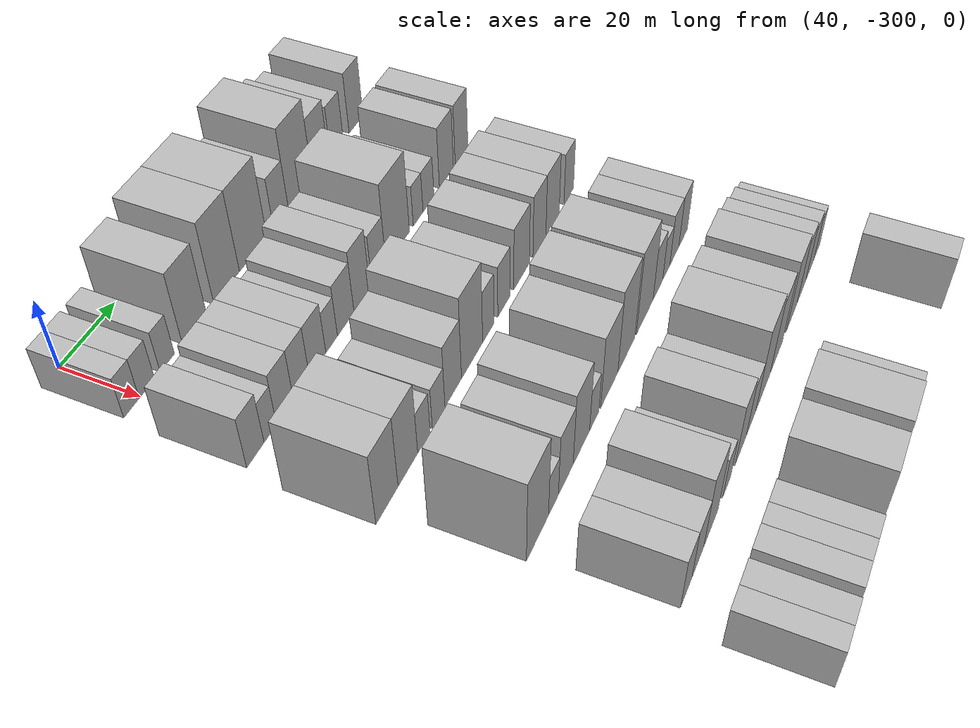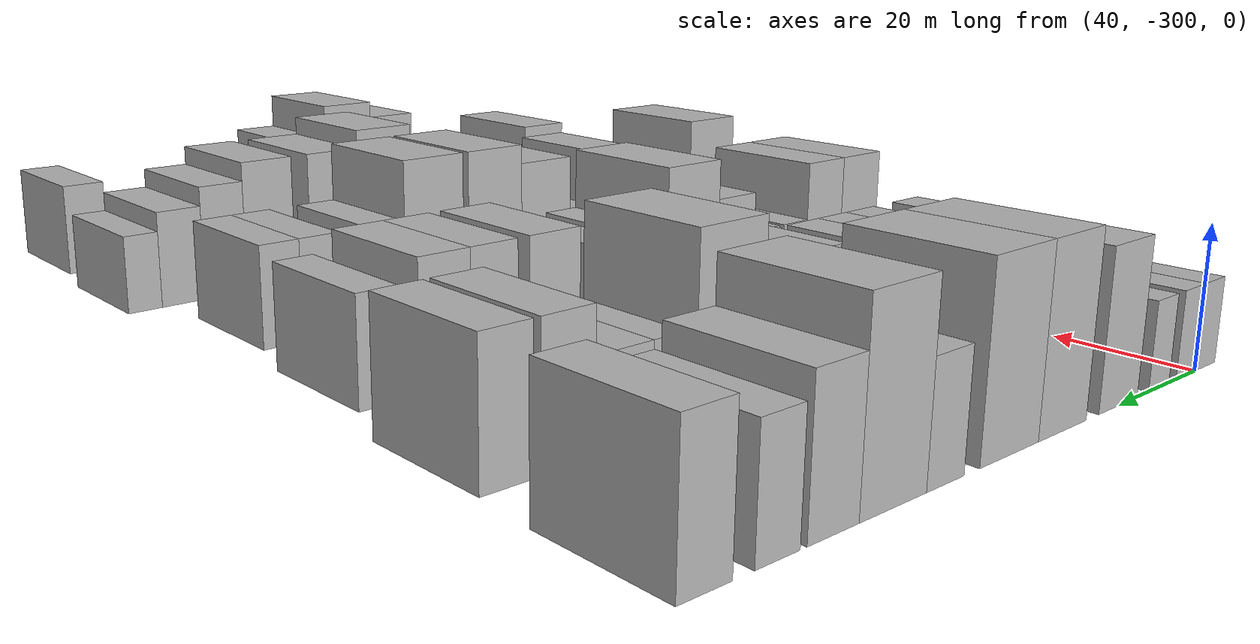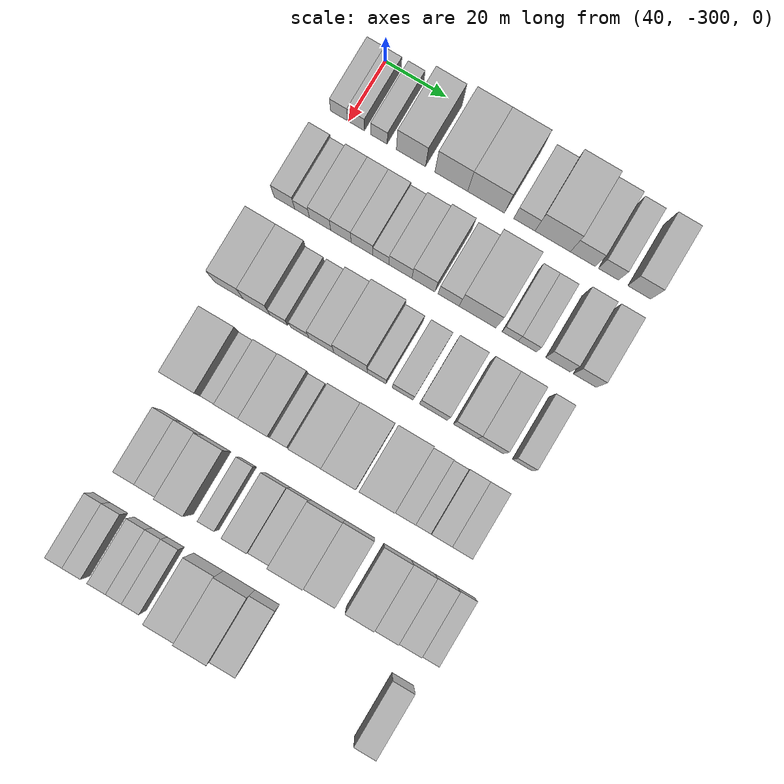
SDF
<sdf version="1.6">
 <world name="default">
  <model name="building_26">
   <static>1</static>
   <pose>50.0000 -303.1482 0 0.000000 0.000000 0.000000</pose>
   <link name="link">
    <pose>0 0 6.00 0 0 0</pose>
    <collision name="collision"><geometry><box><size>20.0000 5.4807 12.0000</size></box></geometry></collision>
    <visual name="visual">
     <cast_shadows>0</cast_shadows>
     <geometry><box><size>20.0000 5.4807 12.0000</size></box></geometry>
     <material>
      <script>
       <uri>model://HANNAS_wall/materials/scripts</uri>
       <uri>model://HANNAS_wall/materials/textures</uri>
       <name>vrc/HANNAS_wall</name>
      </script>
     </material>
    </visual>
   </link>
  </model>
  <model name="building_27">
   <static>1</static>
   <pose>50.0000 -297.6138 0 0.000000 0.000000 0.000000</pose>
   <link name="link">
    <pose>0 0 6.00 0 0 0</pose>
    <collision name="collision"><geometry><box><size>20.0000 5.5881 12.0000</size></box></geometry></collision>
    <visual name="visual">
     <cast_shadows>0</cast_shadows>
     <geometry><box><size>20.0000 5.5881 12.0000</size></box></geometry>
     <material>
      <script>
       <uri>model://HANNAS_wall/materials/scripts</uri>
       <uri>model://HANNAS_wall/materials/textures</uri>
       <name>vrc/HANNAS_wall</name>
      </script>
     </material>
    </visual>
   </link>
  </model>
  <model name="building_28">
   <static>1</static>
   <pose>50.0000 -290.1360 0 0.000000 0.000000 0.000000</pose>
   <link name="link">
    <pose>0 0 6.00 0 0 0</pose>
    <collision name="collision"><geometry><box><size>20.0000 5.3675 12.0000</size></box></geometry></collision>
    <visual name="visual">
     <cast_shadows>0</cast_shadows>
     <geometry><box><size>20.0000 5.3675 12.0000</size></box></geometry>
     <material>
      <script>
       <uri>model://HANNAS_wall/materials/scripts</uri>
       <uri>model://HANNAS_wall/materials/textures</uri>
       <name>vrc/HANNAS_wall</name>
      </script>
     </material>
    </visual>
   </link>
  </model>
  <model name="building_29">
   <static>1</static>
   <pose>50.0000 -279.7111 0 0.000000 0.000000 0.000000</pose>
   <link name="link">
    <pose>0 0 10.50 0 0 0</pose>
    <collision name="collision"><geometry><box><size>20.0000 9.4824 21.0000</size></box></geometry></collision>
    <visual name="visual">
     <cast_shadows>0</cast_shadows>
     <geometry><box><size>20.0000 9.4824 21.0000</size></box></geometry>
     <material>
      <script>
       <uri>model://HANNAS_wall/materials/scripts</uri>
       <uri>model://HANNAS_wall/materials/textures</uri>
       <name>vrc/HANNAS_wall</name>
      </script>
     </material>
    </visual>
   </link>
  </model>
  <model name="building_30">
   <static>1</static>
   <pose>50.0000 -266.6334 0 0.000000 0.000000 0.000000</pose>
   <link name="link">
    <pose>0 0 12.00 0 0 0</pose>
    <collision name="collision"><geometry><box><size>20.0000 10.6729 24.0000</size></box></geometry></collision>
    <visual name="visual">
     <cast_shadows>0</cast_shadows>
     <geometry><box><size>20.0000 10.6729 24.0000</size></box></geometry>
     <material>
      <script>
       <uri>model://HANNAS_wall/materials/scripts</uri>
       <uri>model://HANNAS_wall/materials/textures</uri>
       <name>vrc/HANNAS_wall</name>
      </script>
     </material>
    </visual>
   </link>
  </model>
  <model name="building_31">
   <static>1</static>
   <pose>50.0000 -255.3249 0 0.000000 0.000000 0.000000</pose>
   <link name="link">
    <pose>0 0 12.00 0 0 0</pose>
    <collision name="collision"><geometry><box><size>20.0000 11.9442 24.0000</size></box></geometry></collision>
    <visual name="visual">
     <cast_shadows>0</cast_shadows>
     <geometry><box><size>20.0000 11.9442 24.0000</size></box></geometry>
     <material>
      <script>
       <uri>model://HANNAS_wall/materials/scripts</uri>
       <uri>model://HANNAS_wall/materials/textures</uri>
       <name>vrc/HANNAS_wall</name>
      </script>
     </material>
    </visual>
   </link>
  </model>
  <model name="building_32">
   <static>1</static>
   <pose>50.0000 -242.9015 0 0.000000 0.000000 0.000000</pose>
   <link name="link">
    <pose>0 0 7.50 0 0 0</pose>
    <collision name="collision"><geometry><box><size>20.0000 6.9024 15.0000</size></box></geometry></collision>
    <visual name="visual">
     <cast_shadows>0</cast_shadows>
     <geometry><box><size>20.0000 6.9024 15.0000</size></box></geometry>
     <material>
      <script>
       <uri>model://HANNAS_wall/materials/scripts</uri>
       <uri>model://HANNAS_wall/materials/textures</uri>
       <name>vrc/HANNAS_wall</name>
      </script>
     </material>
    </visual>
   </link>
  </model>
  <model name="building_33">
   <static>1</static>
   <pose>50.0000 -233.7580 0 0.000000 0.000000 0.000000</pose>
   <link name="link">
    <pose>0 0 12.00 0 0 0</pose>
    <collision name="collision"><geometry><box><size>20.0000 11.3847 24.0000</size></box></geometry></collision>
    <visual name="visual">
     <cast_shadows>0</cast_shadows>
     <geometry><box><size>20.0000 11.3847 24.0000</size></box></geometry>
     <material>
      <script>
       <uri>model://HANNAS_wall/materials/scripts</uri>
       <uri>model://HANNAS_wall/materials/textures</uri>
       <name>vrc/HANNAS_wall</name>
      </script>
     </material>
    </visual>
   </link>
  </model>
  <model name="building_34">
   <static>1</static>
   <pose>50.0000 -224.0457 0 0.000000 0.000000 0.000000</pose>
   <link name="link">
    <pose>0 0 9.00 0 0 0</pose>
    <collision name="collision"><geometry><box><size>20.0000 8.0400 18.0000</size></box></geometry></collision>
    <visual name="visual">
     <cast_shadows>0</cast_shadows>
     <geometry><box><size>20.0000 8.0400 18.0000</size></box></geometry>
     <material>
      <script>
       <uri>model://HANNAS_wall/materials/scripts</uri>
       <uri>model://HANNAS_wall/materials/textures</uri>
       <name>vrc/HANNAS_wall</name>
      </script>
     </material>
    </visual>
   </link>
  </model>
  <model name="building_35">
   <static>1</static>
   <pose>50.0000 -215.7767 0 0.000000 0.000000 0.000000</pose>
   <link name="link">
    <pose>0 0 7.50 0 0 0</pose>
    <collision name="collision"><geometry><box><size>20.0000 6.4979 15.0000</size></box></geometry></collision>
    <visual name="visual">
     <cast_shadows>0</cast_shadows>
     <geometry><box><size>20.0000 6.4979 15.0000</size></box></geometry>
     <material>
      <script>
       <uri>model://HANNAS_wall/materials/scripts</uri>
       <uri>model://HANNAS_wall/materials/textures</uri>
       <name>vrc/HANNAS_wall</name>
      </script>
     </material>
    </visual>
   </link>
  </model>
  <model name="building_36">
   <static>1</static>
   <pose>50.0000 -205.8524 0 0.000000 0.000000 0.000000</pose>
   <link name="link">
    <pose>0 0 9.00 0 0 0</pose>
    <collision name="collision"><geometry><box><size>20.0000 7.3507 18.0000</size></box></geometry></collision>
    <visual name="visual">
     <cast_shadows>0</cast_shadows>
     <geometry><box><size>20.0000 7.3507 18.0000</size></box></geometry>
     <material>
      <script>
       <uri>model://HANNAS_wall/materials/scripts</uri>
       <uri>model://HANNAS_wall/materials/textures</uri>
       <name>vrc/HANNAS_wall</name>
      </script>
     </material>
    </visual>
   </link>
  </model>
  <model name="building_140">
   <static>1</static>
   <pose>79.0000 -303.5198 0 0.000000 0.000000 0.000000</pose>
   <link name="link">
    <pose>0 0 7.50 0 0 0</pose>
    <collision name="collision"><geometry><box><size>20.0000 6.6471 15.0000</size></box></geometry></collision>
    <visual name="visual">
     <cast_shadows>0</cast_shadows>
     <geometry><box><size>20.0000 6.6471 15.0000</size></box></geometry>
     <material>
      <script>
       <uri>model://HANNAS_wall/materials/scripts</uri>
       <uri>model://HANNAS_wall/materials/textures</uri>
       <name>vrc/HANNAS_wall</name>
      </script>
     </material>
    </visual>
   </link>
  </model>
  <model name="building_141">
   <static>1</static>
   <pose>79.0000 -297.7622 0 0.000000 0.000000 0.000000</pose>
   <link name="link">
    <pose>0 0 6.00 0 0 0</pose>
    <collision name="collision"><geometry><box><size>20.0000 4.8681 12.0000</size></box></geometry></collision>
    <visual name="visual">
     <cast_shadows>0</cast_shadows>
     <geometry><box><size>20.0000 4.8681 12.0000</size></box></geometry>
     <material>
      <script>
       <uri>model://HANNAS_wall/materials/scripts</uri>
       <uri>model://HANNAS_wall/materials/textures</uri>
       <name>vrc/HANNAS_wall</name>
      </script>
     </material>
    </visual>
   </link>
  </model>
  <model name="building_142">
   <static>1</static>
   <pose>79.0000 -291.8940 0 0.000000 0.000000 0.000000</pose>
   <link name="link">
    <pose>0 0 7.50 0 0 0</pose>
    <collision name="collision"><geometry><box><size>20.0000 6.8684 15.0000</size></box></geometry></collision>
    <visual name="visual">
     <cast_shadows>0</cast_shadows>
     <geometry><box><size>20.0000 6.8684 15.0000</size></box></geometry>
     <material>
      <script>
       <uri>model://HANNAS_wall/materials/scripts</uri>
       <uri>model://HANNAS_wall/materials/textures</uri>
       <name>vrc/HANNAS_wall</name>
      </script>
     </material>
    </visual>
   </link>
  </model>
  <model name="building_143">
   <static>1</static>
   <pose>79.0000 -285.1559 0 0.000000 0.000000 0.000000</pose>
   <link name="link">
    <pose>0 0 7.50 0 0 0</pose>
    <collision name="collision"><geometry><box><size>20.0000 6.6078 15.0000</size></box></geometry></collision>
    <visual name="visual">
     <cast_shadows>0</cast_shadows>
     <geometry><box><size>20.0000 6.6078 15.0000</size></box></geometry>
     <material>
      <script>
       <uri>model://HANNAS_wall/materials/scripts</uri>
       <uri>model://HANNAS_wall/materials/textures</uri>
       <name>vrc/HANNAS_wall</name>
      </script>
     </material>
    </visual>
   </link>
  </model>
  <model name="building_144">
   <static>1</static>
   <pose>79.0000 -278.3234 0 0.000000 0.000000 0.000000</pose>
   <link name="link">
    <pose>0 0 7.50 0 0 0</pose>
    <collision name="collision"><geometry><box><size>20.0000 7.0571 15.0000</size></box></geometry></collision>
    <visual name="visual">
     <cast_shadows>0</cast_shadows>
     <geometry><box><size>20.0000 7.0571 15.0000</size></box></geometry>
     <material>
      <script>
       <uri>model://HANNAS_wall/materials/scripts</uri>
       <uri>model://HANNAS_wall/materials/textures</uri>
       <name>vrc/HANNAS_wall</name>
      </script>
     </material>
    </visual>
   </link>
  </model>
  <model name="building_145">
   <static>1</static>
   <pose>79.0000 -272.2304 0 0.000000 0.000000 0.000000</pose>
   <link name="link">
    <pose>0 0 6.00 0 0 0</pose>
    <collision name="collision"><geometry><box><size>20.0000 5.1289 12.0000</size></box></geometry></collision>
    <visual name="visual">
     <cast_shadows>0</cast_shadows>
     <geometry><box><size>20.0000 5.1289 12.0000</size></box></geometry>
     <material>
      <script>
       <uri>model://HANNAS_wall/materials/scripts</uri>
       <uri>model://HANNAS_wall/materials/textures</uri>
       <name>vrc/HANNAS_wall</name>
      </script>
     </material>
    </visual>
   </link>
  </model>
  <model name="building_146">
   <static>1</static>
   <pose>79.0000 -265.9196 0 0.000000 0.000000 0.000000</pose>
   <link name="link">
    <pose>0 0 7.50 0 0 0</pose>
    <collision name="collision"><geometry><box><size>20.0000 7.4927 15.0000</size></box></geometry></collision>
    <visual name="visual">
     <cast_shadows>0</cast_shadows>
     <geometry><box><size>20.0000 7.4927 15.0000</size></box></geometry>
     <material>
      <script>
       <uri>model://HANNAS_wall/materials/scripts</uri>
       <uri>model://HANNAS_wall/materials/textures</uri>
       <name>vrc/HANNAS_wall</name>
      </script>
     </material>
    </visual>
   </link>
  </model>
  <model name="building_147">
   <static>1</static>
   <pose>79.0000 -258.4495 0 0.000000 0.000000 0.000000</pose>
   <link name="link">
    <pose>0 0 9.00 0 0 0</pose>
    <collision name="collision"><geometry><box><size>20.0000 7.4475 18.0000</size></box></geometry></collision>
    <visual name="visual">
     <cast_shadows>0</cast_shadows>
     <geometry><box><size>20.0000 7.4475 18.0000</size></box></geometry>
     <material>
      <script>
       <uri>model://HANNAS_wall/materials/scripts</uri>
       <uri>model://HANNAS_wall/materials/textures</uri>
       <name>vrc/HANNAS_wall</name>
      </script>
     </material>
    </visual>
   </link>
  </model>
  <model name="building_148">
   <static>1</static>
   <pose>79.0000 -250.3141 0 0.000000 0.000000 0.000000</pose>
   <link name="link">
    <pose>0 0 7.50 0 0 0</pose>
    <collision name="collision"><geometry><box><size>20.0000 6.8232 15.0000</size></box></geometry></collision>
    <visual name="visual">
     <cast_shadows>0</cast_shadows>
     <geometry><box><size>20.0000 6.8232 15.0000</size></box></geometry>
     <material>
      <script>
       <uri>model://HANNAS_wall/materials/scripts</uri>
       <uri>model://HANNAS_wall/materials/textures</uri>
       <name>vrc/HANNAS_wall</name>
      </script>
     </material>
    </visual>
   </link>
  </model>
  <model name="building_149">
   <static>1</static>
   <pose>79.0000 -240.9901 0 0.000000 0.000000 0.000000</pose>
   <link name="link">
    <pose>0 0 12.00 0 0 0</pose>
    <collision name="collision"><geometry><box><size>20.0000 11.8248 24.0000</size></box></geometry></collision>
    <visual name="visual">
     <cast_shadows>0</cast_shadows>
     <geometry><box><size>20.0000 11.8248 24.0000</size></box></geometry>
     <material>
      <script>
       <uri>model://HANNAS_wall/materials/scripts</uri>
       <uri>model://HANNAS_wall/materials/textures</uri>
       <name>vrc/HANNAS_wall</name>
      </script>
     </material>
    </visual>
   </link>
  </model>
  <model name="building_150">
   <static>1</static>
   <pose>79.0000 -230.5097 0 0.000000 0.000000 0.000000</pose>
   <link name="link">
    <pose>0 0 6.00 0 0 0</pose>
    <collision name="collision"><geometry><box><size>20.0000 5.1362 12.0000</size></box></geometry></collision>
    <visual name="visual">
     <cast_shadows>0</cast_shadows>
     <geometry><box><size>20.0000 5.1362 12.0000</size></box></geometry>
     <material>
      <script>
       <uri>model://HANNAS_wall/materials/scripts</uri>
       <uri>model://HANNAS_wall/materials/textures</uri>
       <name>vrc/HANNAS_wall</name>
      </script>
     </material>
    </visual>
   </link>
  </model>
  <model name="building_151">
   <static>1</static>
   <pose>79.0000 -224.9962 0 0.000000 0.000000 0.000000</pose>
   <link name="link">
    <pose>0 0 6.00 0 0 0</pose>
    <collision name="collision"><geometry><box><size>20.0000 5.8908 12.0000</size></box></geometry></collision>
    <visual name="visual">
     <cast_shadows>0</cast_shadows>
     <geometry><box><size>20.0000 5.8908 12.0000</size></box></geometry>
     <material>
      <script>
       <uri>model://HANNAS_wall/materials/scripts</uri>
       <uri>model://HANNAS_wall/materials/textures</uri>
       <name>vrc/HANNAS_wall</name>
      </script>
     </material>
    </visual>
   </link>
  </model>
  <model name="building_152">
   <static>1</static>
   <pose>79.0000 -215.1160 0 0.000000 0.000000 0.000000</pose>
   <link name="link">
    <pose>0 0 9.00 0 0 0</pose>
    <collision name="collision"><geometry><box><size>20.0000 7.8697 18.0000</size></box></geometry></collision>
    <visual name="visual">
     <cast_shadows>0</cast_shadows>
     <geometry><box><size>20.0000 7.8697 18.0000</size></box></geometry>
     <material>
      <script>
       <uri>model://HANNAS_wall/materials/scripts</uri>
       <uri>model://HANNAS_wall/materials/textures</uri>
       <name>vrc/HANNAS_wall</name>
      </script>
     </material>
    </visual>
   </link>
  </model>
  <model name="building_153">
   <static>1</static>
   <pose>79.0000 -206.5068 0 0.000000 0.000000 0.000000</pose>
   <link name="link">
    <pose>0 0 9.00 0 0 0</pose>
    <collision name="collision"><geometry><box><size>20.0000 7.3486 18.0000</size></box></geometry></collision>
    <visual name="visual">
     <cast_shadows>0</cast_shadows>
     <geometry><box><size>20.0000 7.3486 18.0000</size></box></geometry>
     <material>
      <script>
       <uri>model://HANNAS_wall/materials/scripts</uri>
       <uri>model://HANNAS_wall/materials/textures</uri>
       <name>vrc/HANNAS_wall</name>
      </script>
     </material>
    </visual>
   </link>
  </model>
  <model name="building_260">
   <static>1</static>
   <pose>108.0000 -303.9348 0 0.000000 0.000000 0.000000</pose>
   <link name="link">
    <pose>0 0 10.50 0 0 0</pose>
    <collision name="collision"><geometry><box><size>20.0000 9.3283 21.0000</size></box></geometry></collision>
    <visual name="visual">
     <cast_shadows>0</cast_shadows>
     <geometry><box><size>20.0000 9.3283 21.0000</size></box></geometry>
     <material>
      <script>
       <uri>model://HANNAS_wall/materials/scripts</uri>
       <uri>model://HANNAS_wall/materials/textures</uri>
       <name>vrc/HANNAS_wall</name>
      </script>
     </material>
    </visual>
   </link>
  </model>
  <model name="building_261">
   <static>1</static>
   <pose>108.0000 -294.9543 0 0.000000 0.000000 0.000000</pose>
   <link name="link">
    <pose>0 0 10.50 0 0 0</pose>
    <collision name="collision"><geometry><box><size>20.0000 8.6326 21.0000</size></box></geometry></collision>
    <visual name="visual">
     <cast_shadows>0</cast_shadows>
     <geometry><box><size>20.0000 8.6326 21.0000</size></box></geometry>
     <material>
      <script>
       <uri>model://HANNAS_wall/materials/scripts</uri>
       <uri>model://HANNAS_wall/materials/textures</uri>
       <name>vrc/HANNAS_wall</name>
      </script>
     </material>
    </visual>
   </link>
  </model>
  <model name="building_262">
   <static>1</static>
   <pose>108.0000 -287.8194 0 0.000000 0.000000 0.000000</pose>
   <link name="link">
    <pose>0 0 6.00 0 0 0</pose>
    <collision name="collision"><geometry><box><size>20.0000 5.6372 12.0000</size></box></geometry></collision>
    <visual name="visual">
     <cast_shadows>0</cast_shadows>
     <geometry><box><size>20.0000 5.6372 12.0000</size></box></geometry>
     <material>
      <script>
       <uri>model://HANNAS_wall/materials/scripts</uri>
       <uri>model://HANNAS_wall/materials/textures</uri>
       <name>vrc/HANNAS_wall</name>
      </script>
     </material>
    </visual>
   </link>
  </model>
  <model name="building_263">
   <static>1</static>
   <pose>108.0000 -281.0269 0 0.000000 0.000000 0.000000</pose>
   <link name="link">
    <pose>0 0 6.00 0 0 0</pose>
    <collision name="collision"><geometry><box><size>20.0000 5.9477 12.0000</size></box></geometry></collision>
    <visual name="visual">
     <cast_shadows>0</cast_shadows>
     <geometry><box><size>20.0000 5.9477 12.0000</size></box></geometry>
     <material>
      <script>
       <uri>model://HANNAS_wall/materials/scripts</uri>
       <uri>model://HANNAS_wall/materials/textures</uri>
       <name>vrc/HANNAS_wall</name>
      </script>
     </material>
    </visual>
   </link>
  </model>
  <model name="building_264">
   <static>1</static>
   <pose>108.0000 -274.0339 0 0.000000 0.000000 0.000000</pose>
   <link name="link">
    <pose>0 0 9.00 0 0 0</pose>
    <collision name="collision"><geometry><box><size>20.0000 8.0382 18.0000</size></box></geometry></collision>
    <visual name="visual">
     <cast_shadows>0</cast_shadows>
     <geometry><box><size>20.0000 8.0382 18.0000</size></box></geometry>
     <material>
      <script>
       <uri>model://HANNAS_wall/materials/scripts</uri>
       <uri>model://HANNAS_wall/materials/textures</uri>
       <name>vrc/HANNAS_wall</name>
      </script>
     </material>
    </visual>
   </link>
  </model>
  <model name="building_265">
   <static>1</static>
   <pose>108.0000 -264.6575 0 0.000000 0.000000 0.000000</pose>
   <link name="link">
    <pose>0 0 12.00 0 0 0</pose>
    <collision name="collision"><geometry><box><size>20.0000 10.7147 24.0000</size></box></geometry></collision>
    <visual name="visual">
     <cast_shadows>0</cast_shadows>
     <geometry><box><size>20.0000 10.7147 24.0000</size></box></geometry>
     <material>
      <script>
       <uri>model://HANNAS_wall/materials/scripts</uri>
       <uri>model://HANNAS_wall/materials/textures</uri>
       <name>vrc/HANNAS_wall</name>
      </script>
     </material>
    </visual>
   </link>
  </model>
  <model name="building_266">
   <static>1</static>
   <pose>108.0000 -256.2920 0 0.000000 0.000000 0.000000</pose>
   <link name="link">
    <pose>0 0 7.50 0 0 0</pose>
    <collision name="collision"><geometry><box><size>20.0000 6.0162 15.0000</size></box></geometry></collision>
    <visual name="visual">
     <cast_shadows>0</cast_shadows>
     <geometry><box><size>20.0000 6.0162 15.0000</size></box></geometry>
     <material>
      <script>
       <uri>model://HANNAS_wall/materials/scripts</uri>
       <uri>model://HANNAS_wall/materials/textures</uri>
       <name>vrc/HANNAS_wall</name>
      </script>
     </material>
    </visual>
   </link>
  </model>
  <model name="building_267">
   <static>1</static>
   <pose>108.0000 -247.9159 0 0.000000 0.000000 0.000000</pose>
   <link name="link">
    <pose>0 0 7.50 0 0 0</pose>
    <collision name="collision"><geometry><box><size>20.0000 6.7362 15.0000</size></box></geometry></collision>
    <visual name="visual">
     <cast_shadows>0</cast_shadows>
     <geometry><box><size>20.0000 6.7362 15.0000</size></box></geometry>
     <material>
      <script>
       <uri>model://HANNAS_wall/materials/scripts</uri>
       <uri>model://HANNAS_wall/materials/textures</uri>
       <name>vrc/HANNAS_wall</name>
      </script>
     </material>
    </visual>
   </link>
  </model>
  <model name="building_268">
   <static>1</static>
   <pose>108.0000 -238.0863 0 0.000000 0.000000 0.000000</pose>
   <link name="link">
    <pose>0 0 9.00 0 0 0</pose>
    <collision name="collision"><geometry><box><size>20.0000 8.9230 18.0000</size></box></geometry></collision>
    <visual name="visual">
     <cast_shadows>0</cast_shadows>
     <geometry><box><size>20.0000 8.9230 18.0000</size></box></geometry>
     <material>
      <script>
       <uri>model://HANNAS_wall/materials/scripts</uri>
       <uri>model://HANNAS_wall/materials/textures</uri>
       <name>vrc/HANNAS_wall</name>
      </script>
     </material>
    </visual>
   </link>
  </model>
  <model name="building_269">
   <static>1</static>
   <pose>108.0000 -227.7511 0 0.000000 0.000000 0.000000</pose>
   <link name="link">
    <pose>0 0 9.00 0 0 0</pose>
    <collision name="collision"><geometry><box><size>20.0000 7.7475 18.0000</size></box></geometry></collision>
    <visual name="visual">
     <cast_shadows>0</cast_shadows>
     <geometry><box><size>20.0000 7.7475 18.0000</size></box></geometry>
     <material>
      <script>
       <uri>model://HANNAS_wall/materials/scripts</uri>
       <uri>model://HANNAS_wall/materials/textures</uri>
       <name>vrc/HANNAS_wall</name>
      </script>
     </material>
    </visual>
   </link>
  </model>
  <model name="building_270">
   <static>1</static>
   <pose>108.0000 -219.8038 0 0.000000 0.000000 0.000000</pose>
   <link name="link">
    <pose>0 0 9.00 0 0 0</pose>
    <collision name="collision"><geometry><box><size>20.0000 8.1471 18.0000</size></box></geometry></collision>
    <visual name="visual">
     <cast_shadows>0</cast_shadows>
     <geometry><box><size>20.0000 8.1471 18.0000</size></box></geometry>
     <material>
      <script>
       <uri>model://HANNAS_wall/materials/scripts</uri>
       <uri>model://HANNAS_wall/materials/textures</uri>
       <name>vrc/HANNAS_wall</name>
      </script>
     </material>
    </visual>
   </link>
  </model>
  <model name="building_271">
   <static>1</static>
   <pose>108.0000 -209.6939 0 0.000000 0.000000 0.000000</pose>
   <link name="link">
    <pose>0 0 7.50 0 0 0</pose>
    <collision name="collision"><geometry><box><size>20.0000 6.0727 15.0000</size></box></geometry></collision>
    <visual name="visual">
     <cast_shadows>0</cast_shadows>
     <geometry><box><size>20.0000 6.0727 15.0000</size></box></geometry>
     <material>
      <script>
       <uri>model://HANNAS_wall/materials/scripts</uri>
       <uri>model://HANNAS_wall/materials/textures</uri>
       <name>vrc/HANNAS_wall</name>
      </script>
     </material>
    </visual>
   </link>
  </model>
  <model name="building_378">
   <static>1</static>
   <pose>137.0000 -299.4760 0 0.000000 0.000000 0.000000</pose>
   <link name="link">
    <pose>0 0 12.00 0 0 0</pose>
    <collision name="collision"><geometry><box><size>20.0000 10.8136 24.0000</size></box></geometry></collision>
    <visual name="visual">
     <cast_shadows>0</cast_shadows>
     <geometry><box><size>20.0000 10.8136 24.0000</size></box></geometry>
     <material>
      <script>
       <uri>model://HANNAS_wall/materials/scripts</uri>
       <uri>model://HANNAS_wall/materials/textures</uri>
       <name>vrc/HANNAS_wall</name>
      </script>
     </material>
    </visual>
   </link>
  </model>
  <model name="building_379">
   <static>1</static>
   <pose>137.0000 -291.5551 0 0.000000 0.000000 0.000000</pose>
   <link name="link">
    <pose>0 0 6.00 0 0 0</pose>
    <collision name="collision"><geometry><box><size>20.0000 5.0281 12.0000</size></box></geometry></collision>
    <visual name="visual">
     <cast_shadows>0</cast_shadows>
     <geometry><box><size>20.0000 5.0281 12.0000</size></box></geometry>
     <material>
      <script>
       <uri>model://HANNAS_wall/materials/scripts</uri>
       <uri>model://HANNAS_wall/materials/textures</uri>
       <name>vrc/HANNAS_wall</name>
      </script>
     </material>
    </visual>
   </link>
  </model>
  <model name="building_380">
   <static>1</static>
   <pose>137.0000 -285.1661 0 0.000000 0.000000 0.000000</pose>
   <link name="link">
    <pose>0 0 9.00 0 0 0</pose>
    <collision name="collision"><geometry><box><size>20.0000 7.7500 18.0000</size></box></geometry></collision>
    <visual name="visual">
     <cast_shadows>0</cast_shadows>
     <geometry><box><size>20.0000 7.7500 18.0000</size></box></geometry>
     <material>
      <script>
       <uri>model://HANNAS_wall/materials/scripts</uri>
       <uri>model://HANNAS_wall/materials/textures</uri>
       <name>vrc/HANNAS_wall</name>
      </script>
     </material>
    </visual>
   </link>
  </model>
  <model name="building_381">
   <static>1</static>
   <pose>137.0000 -276.7986 0 0.000000 0.000000 0.000000</pose>
   <link name="link">
    <pose>0 0 10.50 0 0 0</pose>
    <collision name="collision"><geometry><box><size>20.0000 8.9850 21.0000</size></box></geometry></collision>
    <visual name="visual">
     <cast_shadows>0</cast_shadows>
     <geometry><box><size>20.0000 8.9850 21.0000</size></box></geometry>
     <material>
      <script>
       <uri>model://HANNAS_wall/materials/scripts</uri>
       <uri>model://HANNAS_wall/materials/textures</uri>
       <name>vrc/HANNAS_wall</name>
      </script>
     </material>
    </visual>
   </link>
  </model>
  <model name="building_382">
   <static>1</static>
   <pose>137.0000 -269.6610 0 0.000000 0.000000 0.000000</pose>
   <link name="link">
    <pose>0 0 6.00 0 0 0</pose>
    <collision name="collision"><geometry><box><size>20.0000 5.2902 12.0000</size></box></geometry></collision>
    <visual name="visual">
     <cast_shadows>0</cast_shadows>
     <geometry><box><size>20.0000 5.2902 12.0000</size></box></geometry>
     <material>
      <script>
       <uri>model://HANNAS_wall/materials/scripts</uri>
       <uri>model://HANNAS_wall/materials/textures</uri>
       <name>vrc/HANNAS_wall</name>
      </script>
     </material>
    </visual>
   </link>
  </model>
  <model name="building_383">
   <static>1</static>
   <pose>137.0000 -260.9570 0 0.000000 0.000000 0.000000</pose>
   <link name="link">
    <pose>0 0 10.50 0 0 0</pose>
    <collision name="collision"><geometry><box><size>20.0000 10.1179 21.0000</size></box></geometry></collision>
    <visual name="visual">
     <cast_shadows>0</cast_shadows>
     <geometry><box><size>20.0000 10.1179 21.0000</size></box></geometry>
     <material>
      <script>
       <uri>model://HANNAS_wall/materials/scripts</uri>
       <uri>model://HANNAS_wall/materials/textures</uri>
       <name>vrc/HANNAS_wall</name>
      </script>
     </material>
    </visual>
   </link>
  </model>
  <model name="building_384">
   <static>1</static>
   <pose>137.0000 -250.6492 0 0.000000 0.000000 0.000000</pose>
   <link name="link">
    <pose>0 0 12.00 0 0 0</pose>
    <collision name="collision"><geometry><box><size>20.0000 10.4975 24.0000</size></box></geometry></collision>
    <visual name="visual">
     <cast_shadows>0</cast_shadows>
     <geometry><box><size>20.0000 10.4975 24.0000</size></box></geometry>
     <material>
      <script>
       <uri>model://HANNAS_wall/materials/scripts</uri>
       <uri>model://HANNAS_wall/materials/textures</uri>
       <name>vrc/HANNAS_wall</name>
      </script>
     </material>
    </visual>
   </link>
  </model>
  <model name="building_385">
   <static>1</static>
   <pose>137.0000 -238.9828 0 0.000000 0.000000 0.000000</pose>
   <link name="link">
    <pose>0 0 12.00 0 0 0</pose>
    <collision name="collision"><geometry><box><size>20.0000 10.8354 24.0000</size></box></geometry></collision>
    <visual name="visual">
     <cast_shadows>0</cast_shadows>
     <geometry><box><size>20.0000 10.8354 24.0000</size></box></geometry>
     <material>
      <script>
       <uri>model://HANNAS_wall/materials/scripts</uri>
       <uri>model://HANNAS_wall/materials/textures</uri>
       <name>vrc/HANNAS_wall</name>
      </script>
     </material>
    </visual>
   </link>
  </model>
  <model name="building_386">
   <static>1</static>
   <pose>137.0000 -230.3066 0 0.000000 0.000000 0.000000</pose>
   <link name="link">
    <pose>0 0 7.50 0 0 0</pose>
    <collision name="collision"><geometry><box><size>20.0000 6.5170 15.0000</size></box></geometry></collision>
    <visual name="visual">
     <cast_shadows>0</cast_shadows>
     <geometry><box><size>20.0000 6.5170 15.0000</size></box></geometry>
     <material>
      <script>
       <uri>model://HANNAS_wall/materials/scripts</uri>
       <uri>model://HANNAS_wall/materials/textures</uri>
       <name>vrc/HANNAS_wall</name>
      </script>
     </material>
    </visual>
   </link>
  </model>
  <model name="building_387">
   <static>1</static>
   <pose>137.0000 -224.6121 0 0.000000 0.000000 0.000000</pose>
   <link name="link">
    <pose>0 0 6.00 0 0 0</pose>
    <collision name="collision"><geometry><box><size>20.0000 4.8722 12.0000</size></box></geometry></collision>
    <visual name="visual">
     <cast_shadows>0</cast_shadows>
     <geometry><box><size>20.0000 4.8722 12.0000</size></box></geometry>
     <material>
      <script>
       <uri>model://HANNAS_wall/materials/scripts</uri>
       <uri>model://HANNAS_wall/materials/textures</uri>
       <name>vrc/HANNAS_wall</name>
      </script>
     </material>
    </visual>
   </link>
  </model>
  <model name="building_388">
   <static>1</static>
   <pose>137.0000 -218.9789 0 0.000000 0.000000 0.000000</pose>
   <link name="link">
    <pose>0 0 7.50 0 0 0</pose>
    <collision name="collision"><geometry><box><size>20.0000 6.3942 15.0000</size></box></geometry></collision>
    <visual name="visual">
     <cast_shadows>0</cast_shadows>
     <geometry><box><size>20.0000 6.3942 15.0000</size></box></geometry>
     <material>
      <script>
       <uri>model://HANNAS_wall/materials/scripts</uri>
       <uri>model://HANNAS_wall/materials/textures</uri>
       <name>vrc/HANNAS_wall</name>
      </script>
     </material>
    </visual>
   </link>
  </model>
  <model name="building_389">
   <static>1</static>
   <pose>137.0000 -212.6727 0 0.000000 0.000000 0.000000</pose>
   <link name="link">
    <pose>0 0 7.50 0 0 0</pose>
    <collision name="collision"><geometry><box><size>20.0000 6.2180 15.0000</size></box></geometry></collision>
    <visual name="visual">
     <cast_shadows>0</cast_shadows>
     <geometry><box><size>20.0000 6.2180 15.0000</size></box></geometry>
     <material>
      <script>
       <uri>model://HANNAS_wall/materials/scripts</uri>
       <uri>model://HANNAS_wall/materials/textures</uri>
       <name>vrc/HANNAS_wall</name>
      </script>
     </material>
    </visual>
   </link>
  </model>
  <model name="building_494">
   <static>1</static>
   <pose>166.0000 -299.7592 0 0.000000 0.000000 0.000000</pose>
   <link name="link">
    <pose>0 0 7.50 0 0 0</pose>
    <collision name="collision"><geometry><box><size>20.0000 6.5542 15.0000</size></box></geometry></collision>
    <visual name="visual">
     <cast_shadows>0</cast_shadows>
     <geometry><box><size>20.0000 6.5542 15.0000</size></box></geometry>
     <material>
      <script>
       <uri>model://HANNAS_wall/materials/scripts</uri>
       <uri>model://HANNAS_wall/materials/textures</uri>
       <name>vrc/HANNAS_wall</name>
      </script>
     </material>
    </visual>
   </link>
  </model>
  <model name="building_495">
   <static>1</static>
   <pose>166.0000 -292.8708 0 0.000000 0.000000 0.000000</pose>
   <link name="link">
    <pose>0 0 7.50 0 0 0</pose>
    <collision name="collision"><geometry><box><size>20.0000 7.2226 15.0000</size></box></geometry></collision>
    <visual name="visual">
     <cast_shadows>0</cast_shadows>
     <geometry><box><size>20.0000 7.2226 15.0000</size></box></geometry>
     <material>
      <script>
       <uri>model://HANNAS_wall/materials/scripts</uri>
       <uri>model://HANNAS_wall/materials/textures</uri>
       <name>vrc/HANNAS_wall</name>
      </script>
     </material>
    </visual>
   </link>
  </model>
  <model name="building_496">
   <static>1</static>
   <pose>166.0000 -284.8278 0 0.000000 0.000000 0.000000</pose>
   <link name="link">
    <pose>0 0 10.50 0 0 0</pose>
    <collision name="collision"><geometry><box><size>20.0000 8.8634 21.0000</size></box></geometry></collision>
    <visual name="visual">
     <cast_shadows>0</cast_shadows>
     <geometry><box><size>20.0000 8.8634 21.0000</size></box></geometry>
     <material>
      <script>
       <uri>model://HANNAS_wall/materials/scripts</uri>
       <uri>model://HANNAS_wall/materials/textures</uri>
       <name>vrc/HANNAS_wall</name>
      </script>
     </material>
    </visual>
   </link>
  </model>
  <model name="building_497">
   <static>1</static>
   <pose>166.0000 -274.7664 0 0.000000 0.000000 0.000000</pose>
   <link name="link">
    <pose>0 0 6.00 0 0 0</pose>
    <collision name="collision"><geometry><box><size>20.0000 5.2594 12.0000</size></box></geometry></collision>
    <visual name="visual">
     <cast_shadows>0</cast_shadows>
     <geometry><box><size>20.0000 5.2594 12.0000</size></box></geometry>
     <material>
      <script>
       <uri>model://HANNAS_wall/materials/scripts</uri>
       <uri>model://HANNAS_wall/materials/textures</uri>
       <name>vrc/HANNAS_wall</name>
      </script>
     </material>
    </visual>
   </link>
  </model>
  <model name="building_498">
   <static>1</static>
   <pose>166.0000 -265.2373 0 0.000000 0.000000 0.000000</pose>
   <link name="link">
    <pose>0 0 9.00 0 0 0</pose>
    <collision name="collision"><geometry><box><size>20.0000 7.7988 18.0000</size></box></geometry></collision>
    <visual name="visual">
     <cast_shadows>0</cast_shadows>
     <geometry><box><size>20.0000 7.7988 18.0000</size></box></geometry>
     <material>
      <script>
       <uri>model://HANNAS_wall/materials/scripts</uri>
       <uri>model://HANNAS_wall/materials/textures</uri>
       <name>vrc/HANNAS_wall</name>
      </script>
     </material>
    </visual>
   </link>
  </model>
  <model name="building_499">
   <static>1</static>
   <pose>166.0000 -257.9865 0 0.000000 0.000000 0.000000</pose>
   <link name="link">
    <pose>0 0 7.50 0 0 0</pose>
    <collision name="collision"><geometry><box><size>20.0000 6.7029 15.0000</size></box></geometry></collision>
    <visual name="visual">
     <cast_shadows>0</cast_shadows>
     <geometry><box><size>20.0000 6.7029 15.0000</size></box></geometry>
     <material>
      <script>
       <uri>model://HANNAS_wall/materials/scripts</uri>
       <uri>model://HANNAS_wall/materials/textures</uri>
       <name>vrc/HANNAS_wall</name>
      </script>
     </material>
    </visual>
   </link>
  </model>
  <model name="building_500">
   <static>1</static>
   <pose>166.0000 -249.2490 0 0.000000 0.000000 0.000000</pose>
   <link name="link">
    <pose>0 0 12.00 0 0 0</pose>
    <collision name="collision"><geometry><box><size>20.0000 10.7721 24.0000</size></box></geometry></collision>
    <visual name="visual">
     <cast_shadows>0</cast_shadows>
     <geometry><box><size>20.0000 10.7721 24.0000</size></box></geometry>
     <material>
      <script>
       <uri>model://HANNAS_wall/materials/scripts</uri>
       <uri>model://HANNAS_wall/materials/textures</uri>
       <name>vrc/HANNAS_wall</name>
      </script>
     </material>
    </visual>
   </link>
  </model>
  <model name="building_501">
   <static>1</static>
   <pose>166.0000 -239.1025 0 0.000000 0.000000 0.000000</pose>
   <link name="link">
    <pose>0 0 10.50 0 0 0</pose>
    <collision name="collision"><geometry><box><size>20.0000 9.5210 21.0000</size></box></geometry></collision>
    <visual name="visual">
     <cast_shadows>0</cast_shadows>
     <geometry><box><size>20.0000 9.5210 21.0000</size></box></geometry>
     <material>
      <script>
       <uri>model://HANNAS_wall/materials/scripts</uri>
       <uri>model://HANNAS_wall/materials/textures</uri>
       <name>vrc/HANNAS_wall</name>
      </script>
     </material>
    </visual>
   </link>
  </model>
  <model name="building_502">
   <static>1</static>
   <pose>166.0000 -226.8963 0 0.000000 0.000000 0.000000</pose>
   <link name="link">
    <pose>0 0 10.50 0 0 0</pose>
    <collision name="collision"><geometry><box><size>20.0000 8.8913 21.0000</size></box></geometry></collision>
    <visual name="visual">
     <cast_shadows>0</cast_shadows>
     <geometry><box><size>20.0000 8.8913 21.0000</size></box></geometry>
     <material>
      <script>
       <uri>model://HANNAS_wall/materials/scripts</uri>
       <uri>model://HANNAS_wall/materials/textures</uri>
       <name>vrc/HANNAS_wall</name>
      </script>
     </material>
    </visual>
   </link>
  </model>
  <model name="building_503">
   <static>1</static>
   <pose>166.0000 -218.7679 0 0.000000 0.000000 0.000000</pose>
   <link name="link">
    <pose>0 0 9.00 0 0 0</pose>
    <collision name="collision"><geometry><box><size>20.0000 7.3654 18.0000</size></box></geometry></collision>
    <visual name="visual">
     <cast_shadows>0</cast_shadows>
     <geometry><box><size>20.0000 7.3654 18.0000</size></box></geometry>
     <material>
      <script>
       <uri>model://HANNAS_wall/materials/scripts</uri>
       <uri>model://HANNAS_wall/materials/textures</uri>
       <name>vrc/HANNAS_wall</name>
      </script>
     </material>
    </visual>
   </link>
  </model>
  <model name="building_504">
   <static>1</static>
   <pose>166.0000 -211.4868 0 0.000000 0.000000 0.000000</pose>
   <link name="link">
    <pose>0 0 7.50 0 0 0</pose>
    <collision name="collision"><geometry><box><size>20.0000 7.1968 15.0000</size></box></geometry></collision>
    <visual name="visual">
     <cast_shadows>0</cast_shadows>
     <geometry><box><size>20.0000 7.1968 15.0000</size></box></geometry>
     <material>
      <script>
       <uri>model://HANNAS_wall/materials/scripts</uri>
       <uri>model://HANNAS_wall/materials/textures</uri>
       <name>vrc/HANNAS_wall</name>
      </script>
     </material>
    </visual>
   </link>
  </model>
  <model name="building_505">
   <static>1</static>
   <pose>166.0000 -205.1623 0 0.000000 0.000000 0.000000</pose>
   <link name="link">
    <pose>0 0 6.00 0 0 0</pose>
    <collision name="collision"><geometry><box><size>20.0000 5.4522 12.0000</size></box></geometry></collision>
    <visual name="visual">
     <cast_shadows>0</cast_shadows>
     <geometry><box><size>20.0000 5.4522 12.0000</size></box></geometry>
     <material>
      <script>
       <uri>model://HANNAS_wall/materials/scripts</uri>
       <uri>model://HANNAS_wall/materials/textures</uri>
       <name>vrc/HANNAS_wall</name>
      </script>
     </material>
    </visual>
   </link>
  </model>
  <model name="building_609">
   <static>1</static>
   <pose>195.0000 -304.4944 0 0.000000 0.000000 0.000000</pose>
   <link name="link">
    <pose>0 0 6.00 0 0 0</pose>
    <collision name="collision"><geometry><box><size>20.0000 5.3981 12.0000</size></box></geometry></collision>
    <visual name="visual">
     <cast_shadows>0</cast_shadows>
     <geometry><box><size>20.0000 5.3981 12.0000</size></box></geometry>
     <material>
      <script>
       <uri>model://HANNAS_wall/materials/scripts</uri>
       <uri>model://HANNAS_wall/materials/textures</uri>
       <name>vrc/HANNAS_wall</name>
      </script>
     </material>
    </visual>
   </link>
  </model>
  <model name="building_610">
   <static>1</static>
   <pose>195.0000 -298.9038 0 0.000000 0.000000 0.000000</pose>
   <link name="link">
    <pose>0 0 6.00 0 0 0</pose>
    <collision name="collision"><geometry><box><size>20.0000 5.7832 12.0000</size></box></geometry></collision>
    <visual name="visual">
     <cast_shadows>0</cast_shadows>
     <geometry><box><size>20.0000 5.7832 12.0000</size></box></geometry>
     <material>
      <script>
       <uri>model://HANNAS_wall/materials/scripts</uri>
       <uri>model://HANNAS_wall/materials/textures</uri>
       <name>vrc/HANNAS_wall</name>
      </script>
     </material>
    </visual>
   </link>
  </model>
  <model name="building_611">
   <static>1</static>
   <pose>195.0000 -291.1303 0 0.000000 0.000000 0.000000</pose>
   <link name="link">
    <pose>0 0 6.00 0 0 0</pose>
    <collision name="collision"><geometry><box><size>20.0000 5.7638 12.0000</size></box></geometry></collision>
    <visual name="visual">
     <cast_shadows>0</cast_shadows>
     <geometry><box><size>20.0000 5.7638 12.0000</size></box></geometry>
     <material>
      <script>
       <uri>model://HANNAS_wall/materials/scripts</uri>
       <uri>model://HANNAS_wall/materials/textures</uri>
       <name>vrc/HANNAS_wall</name>
      </script>
     </material>
    </visual>
   </link>
  </model>
  <model name="building_612">
   <static>1</static>
   <pose>195.0000 -285.7661 0 0.000000 0.000000 0.000000</pose>
   <link name="link">
    <pose>0 0 6.00 0 0 0</pose>
    <collision name="collision"><geometry><box><size>20.0000 4.9647 12.0000</size></box></geometry></collision>
    <visual name="visual">
     <cast_shadows>0</cast_shadows>
     <geometry><box><size>20.0000 4.9647 12.0000</size></box></geometry>
     <material>
      <script>
       <uri>model://HANNAS_wall/materials/scripts</uri>
       <uri>model://HANNAS_wall/materials/textures</uri>
       <name>vrc/HANNAS_wall</name>
      </script>
     </material>
    </visual>
   </link>
  </model>
  <model name="building_613">
   <static>1</static>
   <pose>195.0000 -280.5602 0 0.000000 0.000000 0.000000</pose>
   <link name="link">
    <pose>0 0 6.00 0 0 0</pose>
    <collision name="collision"><geometry><box><size>20.0000 5.4470 12.0000</size></box></geometry></collision>
    <visual name="visual">
     <cast_shadows>0</cast_shadows>
     <geometry><box><size>20.0000 5.4470 12.0000</size></box></geometry>
     <material>
      <script>
       <uri>model://HANNAS_wall/materials/scripts</uri>
       <uri>model://HANNAS_wall/materials/textures</uri>
       <name>vrc/HANNAS_wall</name>
      </script>
     </material>
    </visual>
   </link>
  </model>
  <model name="building_614">
   <static>1</static>
   <pose>195.0000 -270.0635 0 0.000000 0.000000 0.000000</pose>
   <link name="link">
    <pose>0 0 10.50 0 0 0</pose>
    <collision name="collision"><geometry><box><size>20.0000 9.5464 21.0000</size></box></geometry></collision>
    <visual name="visual">
     <cast_shadows>0</cast_shadows>
     <geometry><box><size>20.0000 9.5464 21.0000</size></box></geometry>
     <material>
      <script>
       <uri>model://HANNAS_wall/materials/scripts</uri>
       <uri>model://HANNAS_wall/materials/textures</uri>
       <name>vrc/HANNAS_wall</name>
      </script>
     </material>
    </visual>
   </link>
  </model>
  <model name="building_615">
   <static>1</static>
   <pose>195.0000 -260.2225 0 0.000000 0.000000 0.000000</pose>
   <link name="link">
    <pose>0 0 12.00 0 0 0</pose>
    <collision name="collision"><geometry><box><size>20.0000 10.1355 24.0000</size></box></geometry></collision>
    <visual name="visual">
     <cast_shadows>0</cast_shadows>
     <geometry><box><size>20.0000 10.1355 24.0000</size></box></geometry>
     <material>
      <script>
       <uri>model://HANNAS_wall/materials/scripts</uri>
       <uri>model://HANNAS_wall/materials/textures</uri>
       <name>vrc/HANNAS_wall</name>
      </script>
     </material>
    </visual>
   </link>
  </model>
  <model name="building_616">
   <static>1</static>
   <pose>195.0000 -251.2232 0 0.000000 0.000000 0.000000</pose>
   <link name="link">
    <pose>0 0 9.00 0 0 0</pose>
    <collision name="collision"><geometry><box><size>20.0000 7.8633 18.0000</size></box></geometry></collision>
    <visual name="visual">
     <cast_shadows>0</cast_shadows>
     <geometry><box><size>20.0000 7.8633 18.0000</size></box></geometry>
     <material>
      <script>
       <uri>model://HANNAS_wall/materials/scripts</uri>
       <uri>model://HANNAS_wall/materials/textures</uri>
       <name>vrc/HANNAS_wall</name>
      </script>
     </material>
    </visual>
   </link>
  </model>
  <model name="building_617">
   <static>1</static>
   <pose>195.0000 -208.0274 0 0.000000 0.000000 0.000000</pose>
   <link name="link">
    <pose>0 0 7.50 0 0 0</pose>
    <collision name="collision"><geometry><box><size>20.0000 6.8427 15.0000</size></box></geometry></collision>
    <visual name="visual">
     <cast_shadows>0</cast_shadows>
     <geometry><box><size>20.0000 6.8427 15.0000</size></box></geometry>
     <material>
      <script>
       <uri>model://HANNAS_wall/materials/scripts</uri>
       <uri>model://HANNAS_wall/materials/textures</uri>
       <name>vrc/HANNAS_wall</name>
      </script>
     </material>
    </visual>
   </link>
  </model>
 </world>
</sdf>
